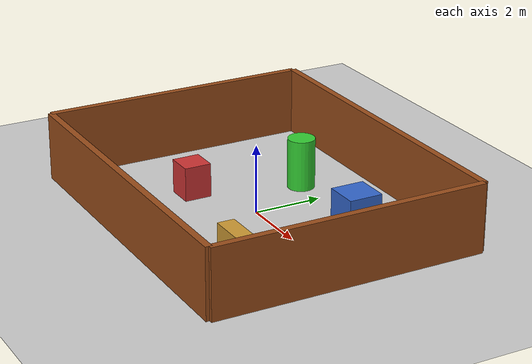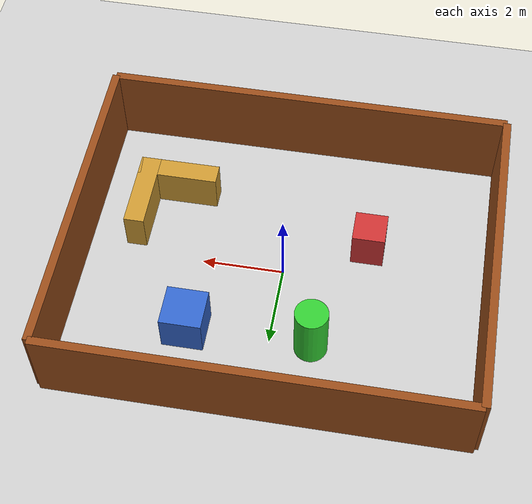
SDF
<?xml version="1.0" ?>
<sdf version="1.8">
  <world name="simple_test_world">
    <!-- Physics -->
    <physics name="1ms" type="ignored">
      <max_step_size>0.001</max_step_size>
      <real_time_factor>1.0</real_time_factor>
    </physics>

    <!-- Plugins -->
    <plugin filename="gz-sim-physics-system" name="gz::sim::systems::Physics"/>
    <plugin filename="gz-sim-user-commands-system" name="gz::sim::systems::UserCommands"/>
    <plugin filename="gz-sim-scene-broadcaster-system" name="gz::sim::systems::SceneBroadcaster"/>
    <plugin filename="gz-sim-sensors-system" name="gz::sim::systems::Sensors"/>

    <!-- Lighting -->
    <light type="directional" name="sun">
      <cast_shadows>true</cast_shadows>
      <pose>0 0 10 0 0 0</pose>
      <diffuse>0.8 0.8 0.8 1</diffuse>
      <specular>0.2 0.2 0.2 1</specular>
      <attenuation>
        <range>1000</range>
        <constant>0.9</constant>
        <linear>0.01</linear>
        <quadratic>0.001</quadratic>
      </attenuation>
      <direction>-0.5 0.1 -0.9</direction>
    </light>

    <!-- Ground Plane -->
    <model name="ground_plane">
      <static>true</static>
      <link name="link">
        <collision name="collision">
          <geometry>
            <plane>
              <normal>0 0 1</normal>
              <size>50 50</size>
            </plane>
          </geometry>
        </collision>
        <visual name="visual">
          <geometry>
            <plane>
              <normal>0 0 1</normal>
              <size>50 50</size>
            </plane>
          </geometry>
          <material>
            <ambient>0.8 0.8 0.8 1</ambient>
            <diffuse>0.8 0.8 0.8 1</diffuse>
            <specular>0.8 0.8 0.8 1</specular>
          </material>
        </visual>
      </link>
    </model>

    <!-- Wall 1 -->
    <model name="wall_1">
      <static>true</static>
      <pose>5 0 1 0 0 0</pose>
      <link name="link">
        <collision name="collision">
          <geometry>
            <box><size>0.2 8 2</size></box>
          </geometry>
        </collision>
        <visual name="visual">
          <geometry>
            <box><size>0.2 8 2</size></box>
          </geometry>
          <material>
            <ambient>0.6 0.3 0.1 1</ambient>
            <diffuse>0.6 0.3 0.1 1</diffuse>
          </material>
        </visual>
      </link>
    </model>

    <!-- Wall 2 -->
    <model name="wall_2">
      <static>true</static>
      <pose>-5 0 1 0 0 0</pose>
      <link name="link">
        <collision name="collision">
          <geometry>
            <box><size>0.2 8 2</size></box>
          </geometry>
        </collision>
        <visual name="visual">
          <geometry>
            <box><size>0.2 8 2</size></box>
          </geometry>
          <material>
            <ambient>0.6 0.3 0.1 1</ambient>
            <diffuse>0.6 0.3 0.1 1</diffuse>
          </material>
        </visual>
      </link>
    </model>

    <!-- Wall 3 -->
    <model name="wall_3">
      <static>true</static>
      <pose>0 4 1 0 0 0</pose>
      <link name="link">
        <collision name="collision">
          <geometry>
            <box><size>10 0.2 2</size></box>
          </geometry>
        </collision>
        <visual name="visual">
          <geometry>
            <box><size>10 0.2 2</size></box>
          </geometry>
          <material>
            <ambient>0.6 0.3 0.1 1</ambient>
            <diffuse>0.6 0.3 0.1 1</diffuse>
          </material>
        </visual>
      </link>
    </model>

    <!-- Wall 4 -->
    <model name="wall_4">
      <static>true</static>
      <pose>0 -4 1 0 0 0</pose>
      <link name="link">
        <collision name="collision">
          <geometry>
            <box><size>10 0.2 2</size></box>
          </geometry>
        </collision>
        <visual name="visual">
          <geometry>
            <box><size>10 0.2 2</size></box>
          </geometry>
          <material>
            <ambient>0.6 0.3 0.1 1</ambient>
            <diffuse>0.6 0.3 0.1 1</diffuse>
          </material>
        </visual>
      </link>
    </model>

    <!-- Box obstacle 1 -->
    <model name="box_1">
      <static>true</static>
      <pose>2 2 0.5 0 0 0</pose>
      <link name="link">
        <collision name="collision">
          <geometry>
            <box><size>1 1 1</size></box>
          </geometry>
        </collision>
        <visual name="visual">
          <geometry>
            <box><size>1 1 1</size></box>
          </geometry>
          <material>
            <ambient>0.2 0.4 0.8 1</ambient>
            <diffuse>0.2 0.4 0.8 1</diffuse>
          </material>
        </visual>
      </link>
    </model>

    <!-- Box obstacle 2 -->
    <model name="box_2">
      <static>true</static>
      <pose>-2 -1 0.5 0 0 0</pose>
      <link name="link">
        <collision name="collision">
          <geometry>
            <box><size>0.8 0.8 1</size></box>
          </geometry>
        </collision>
        <visual name="visual">
          <geometry>
            <box><size>0.8 0.8 1</size></box>
          </geometry>
          <material>
            <ambient>0.8 0.2 0.2 1</ambient>
            <diffuse>0.8 0.2 0.2 1</diffuse>
          </material>
        </visual>
      </link>
    </model>

    <!-- Cylinder obstacle -->
    <model name="cylinder_1">
      <static>true</static>
      <pose>-1 2 0.75 0 0 0</pose>
      <link name="link">
        <collision name="collision">
          <geometry>
            <cylinder>
              <radius>0.4</radius>
              <length>1.5</length>
            </cylinder>
          </geometry>
        </collision>
        <visual name="visual">
          <geometry>
            <cylinder>
              <radius>0.4</radius>
              <length>1.5</length>
            </cylinder>
          </geometry>
          <material>
            <ambient>0.2 0.8 0.2 1</ambient>
            <diffuse>0.2 0.8 0.2 1</diffuse>
          </material>
        </visual>
      </link>
    </model>

    <!-- L-shaped obstacle -->
    <model name="l_shape">
      <static>true</static>
      <pose>3 -2 0.5 0 0 0</pose>
      <link name="link">
        <collision name="collision_1">
          <pose>0 0 0 0 0 0</pose>
          <geometry>
            <box><size>2 0.5 1</size></box>
          </geometry>
        </collision>
        <collision name="collision_2">
          <pose>0.75 0.75 0 0 0 0</pose>
          <geometry>
            <box><size>0.5 2 1</size></box>
          </geometry>
        </collision>
        <visual name="visual_1">
          <pose>0 0 0 0 0 0</pose>
          <geometry>
            <box><size>2 0.5 1</size></box>
          </geometry>
          <material>
            <ambient>0.8 0.6 0.2 1</ambient>
            <diffuse>0.8 0.6 0.2 1</diffuse>
          </material>
        </visual>
        <visual name="visual_2">
          <pose>0.75 0.75 0 0 0 0</pose>
          <geometry>
            <box><size>0.5 2 1</size></box>
          </geometry>
          <material>
            <ambient>0.8 0.6 0.2 1</ambient>
            <diffuse>0.8 0.6 0.2 1</diffuse>
          </material>
        </visual>
      </link>
    </model>

  </world>
</sdf>
